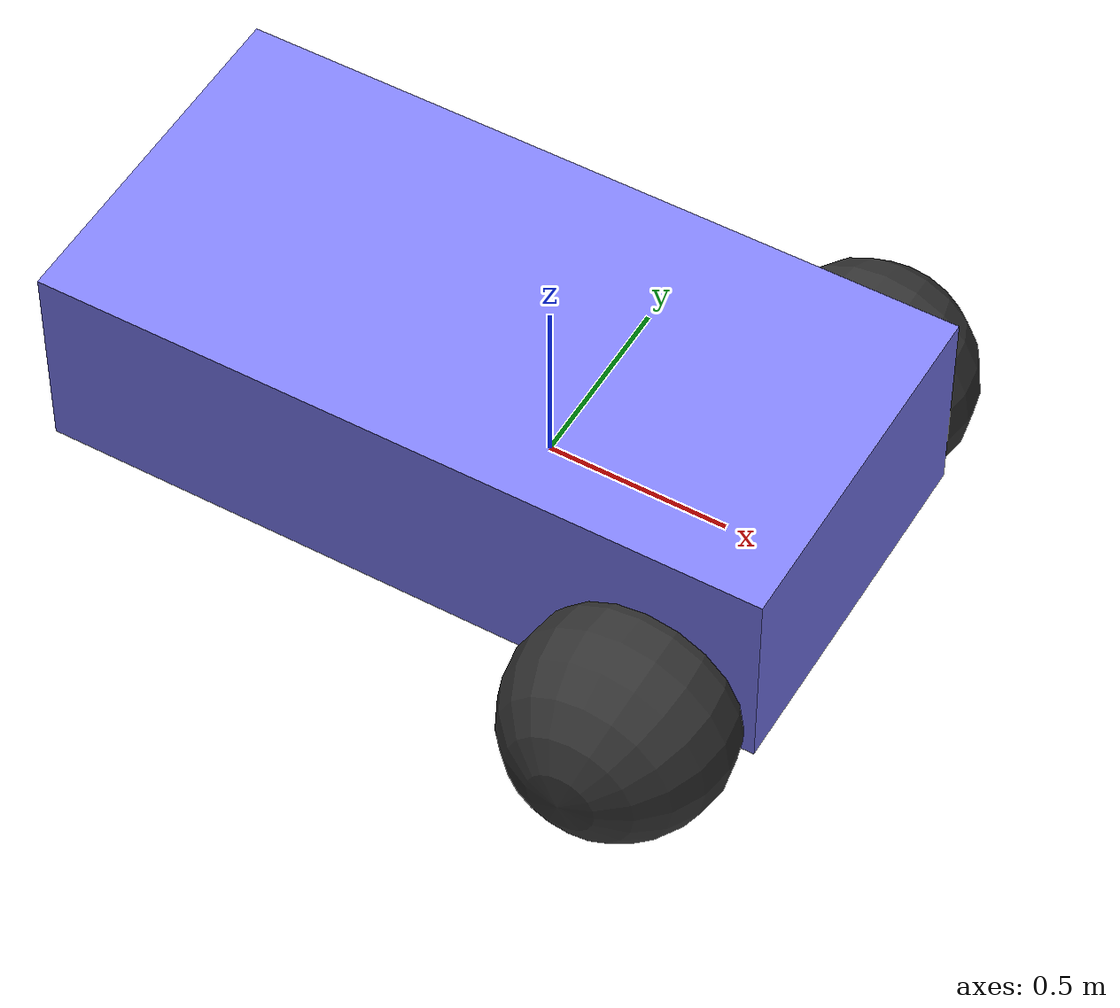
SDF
<?xml version="1.0"?>
<sdf version="1.8">
  <model name='vehicle'>

    <frame name='lidar_frame' attached_to='chassis'>
      <pose>0 0 0.5 0 0 0</pose>
    </frame>

    <link name='chassis'>
      <pose>-0.151427 -0 0.175 0 -0 0</pose>
      <inertial>
        <mass>1.14395</mass>
        <inertia>
          <ixx>0.126164</ixx>
          <ixy>0</ixy>
          <ixz>0</ixz>
          <iyy>0.416519</iyy>
          <iyz>0</iyz>
          <izz>0.481014</izz>
        </inertia>
      </inertial>
      <visual name='visual_chassis'>
        <geometry>
          <box>
            <size>2.01142 1 0.568726</size>
          </box>
        </geometry>
        <material>
          <ambient>0.5 0.5 1.0 1</ambient>
          <diffuse>0.5 0.5 1.0 1</diffuse>
          <specular>0.0 0.0 1.0 1</specular>
        </material>
      </visual>
      <collision name='collision_chassis'>
        <geometry>
          <box>
            <size>2.01142 1 0.568726</size>
          </box>
        </geometry>
      </collision>
    </link>

    <link name='lidar_link'>
      <pose>0 0 0 0 0 0</pose>
      <visual name='visual_lidar'>
        <geometry>
          <cylinder>
            <radius>0.05</radius>
            <length>0.1</length>
          </cylinder>
        </geometry>
      </visual>
      <sensor name='gpu_lidar' type='gpu_lidar'>
        <pose relative_to='lidar_frame'>0 0 0 0 0 0</pose>
        <topic>lidar</topic>
        <update_rate>10</update_rate>
        <ray>
          <scan>
            <horizontal>
              <samples>640</samples>
              <resolution>1</resolution>
              <min_angle>-1.3962633</min_angle>
              <max_angle>1.3962633</max_angle>
            </horizontal>
            <vertical>
              <samples>1</samples>
              <resolution>0.01</resolution>
              <min_angle>0</min_angle>
              <max_angle>0</max_angle>
            </vertical>
          </scan>
          <range>
            <min>0.08</min>
            <max>10.0</max>
            <resolution>0.01</resolution>
          </range>
        </ray>
        <always_on>1</always_on>
        <visualize>true</visualize>
      </sensor>
    </link>

    <joint name='lidar_joint' type='fixed'>
      <parent>chassis</parent>
      <child>lidar_link</child>
      <pose>0 0 0.5 0 0 0</pose>
    </joint>

    <link name='left_wheel'>
      <pose>0.554283 0.625029 -0.025 -1.5707 0 0</pose>
      <inertial>
        <mass>2</mass>
        <inertia>
          <ixx>0.145833</ixx>
          <ixy>0</ixy>
          <ixz>0</ixz>
          <iyy>0.145833</iyy>
          <iyz>0</iyz>
          <izz>0.125</izz>
        </inertia>
      </inertial>
      <visual name='visual_left_wheel'>
        <geometry>
          <sphere>
            <radius>0.3</radius>
          </sphere>
        </geometry>
        <material>
          <ambient>0.2 0.2 0.2 1</ambient>
          <diffuse>0.2 0.2 0.2 1</diffuse>
          <specular>0.2 0.2 0.2 1</specular>
        </material>
      </visual>
      <collision name='collision_left_wheel'>
        <geometry>
          <sphere>
            <radius>0.3</radius>
          </sphere>
        </geometry>
      </collision>
    </link>

    <link name='right_wheel'>
      <pose>0.554282 -0.625029 -0.025 -1.5707 0 0</pose>
      <inertial>
        <mass>2</mass>
        <inertia>
          <ixx>0.145833</ixx>
          <ixy>0</ixy>
          <ixz>0</ixz>
          <iyy>0.145833</iyy>
          <iyz>0</iyz>
          <izz>0.125</izz>
        </inertia>
      </inertial>
      <visual name='visual_right_wheel'>
        <geometry>
          <sphere>
            <radius>0.3</radius>
          </sphere>
        </geometry>
        <material>
          <ambient>0.2 0.2 0.2 1</ambient>
          <diffuse>0.2 0.2 0.2 1</diffuse>
          <specular>0.2 0.2 0.2 1</specular>
        </material>
      </visual>
      <collision name='collision_right_wheel'>
        <geometry>
          <sphere>
            <radius>0.3</radius>
          </sphere>
        </geometry>
      </collision>
    </link>

    <link name='caster'>
      <pose>-0.957138 -0 -0.125 0 -0 0</pose>
      <inertial>
        <mass>1</mass>
        <inertia>
          <ixx>0.1</ixx>
          <ixy>0</ixy>
          <ixz>0</ixz>
          <iyy>0.1</iyy>
          <iyz>0</iyz>
          <izz>0.1</izz>
        </inertia>
      </inertial>
      <visual name='visual_caster'>
        <geometry>
          <sphere>
            <radius>0.2</radius>
          </sphere>
        </geometry>
        <material>
          <ambient>0.2 0.2 0.2 1</ambient>
          <diffuse>0.2 0.2 0.2 1</diffuse>
          <specular>0.2 0.2 0.2 1</specular>
        </material>
      </visual>
      <collision name='collision_caster'>
        <geometry>
          <sphere>
            <radius>0.2</radius>
          </sphere>
        </geometry>
      </collision>
    </link>

    <joint name='left_wheel_joint' type='revolute'>
      <parent>chassis</parent>
      <child>left_wheel</child>
      <axis>
        <xyz>0 0 1</xyz>
        <limit>
          <lower>-1.79769e+308</lower>
          <upper>1.79769e+308</upper>
        </limit>
      </axis>
    </joint>

    <joint name='right_wheel_joint' type='revolute'>
      <parent>chassis</parent>
      <child>right_wheel</child>
      <axis>
        <xyz>0 0 1</xyz>
        <limit>
          <lower>-1.79769e+308</lower>
          <upper>1.79769e+308</upper>
        </limit>
      </axis>
    </joint>

    <joint name='caster_wheel' type='ball'>
      <parent>chassis</parent>
      <child>caster</child>
    </joint>

    <plugin
      filename="ignition-gazebo-diff-drive-system"
      name="ignition::gazebo::systems::DiffDrive">
      <left_joint>left_wheel_joint</left_joint>
      <right_joint>right_wheel_joint</right_joint>
      <wheel_separation>1.25</wheel_separation>
      <wheel_radius>0.3</wheel_radius>
      <odom_publish_frequency>1</odom_publish_frequency>
      <max_linear_acceleration>1</max_linear_acceleration>
      <min_linear_acceleration>-1</min_linear_acceleration>
      <max_angular_acceleration>2</max_angular_acceleration>
      <min_angular_acceleration>-2</min_angular_acceleration>
      <max_linear_velocity>0.5</max_linear_velocity>
      <min_linear_velocity>-0.5</min_linear_velocity>
      <max_angular_velocity>1</max_angular_velocity>
      <min_angular_velocity>-1</min_angular_velocity>
    </plugin>

    <plugin filename='gz-sim-sensors-system'
      name='gz::sim::systems::Sensors'>
      <render_engine>ogre2</render_engine>
    </plugin>

  </model>
</sdf>
